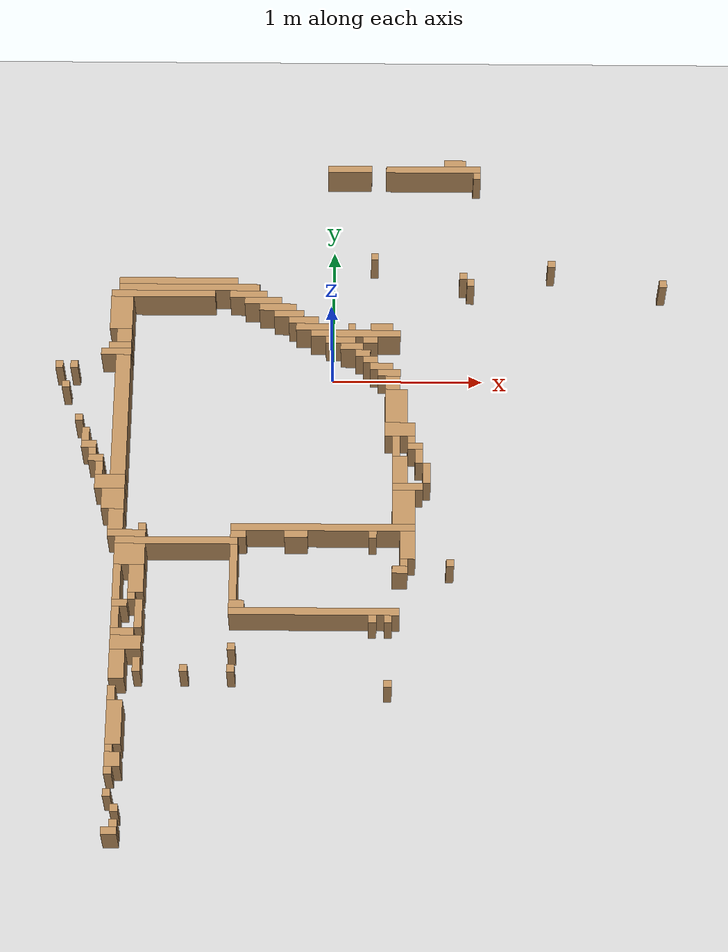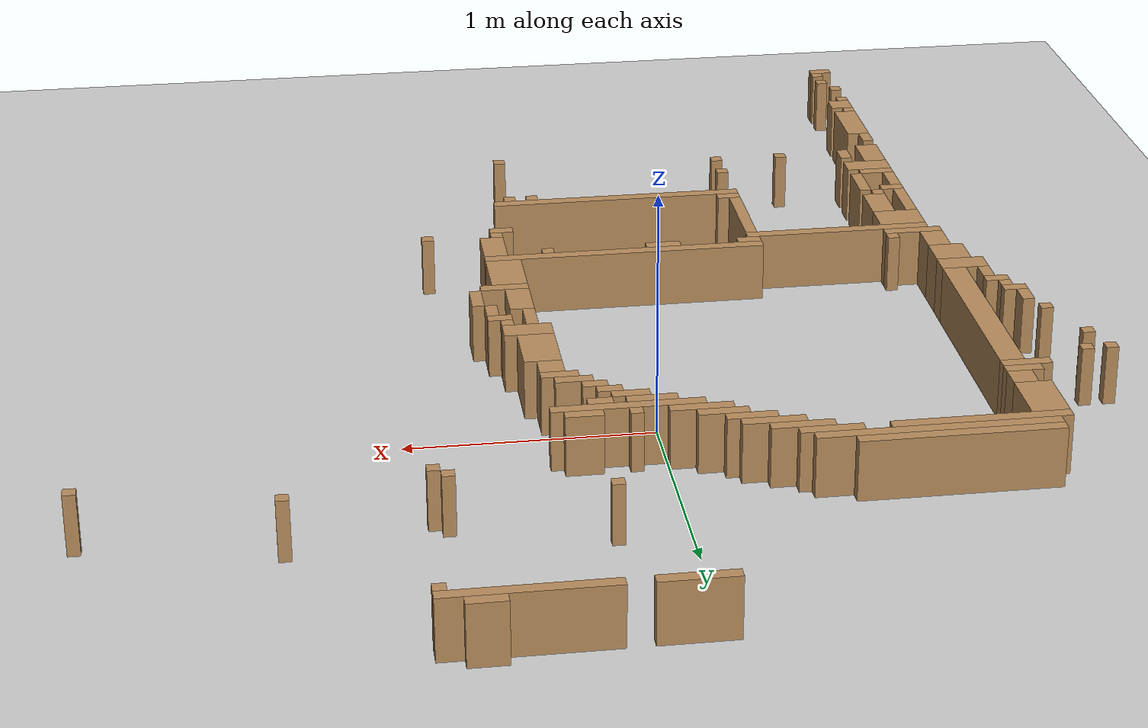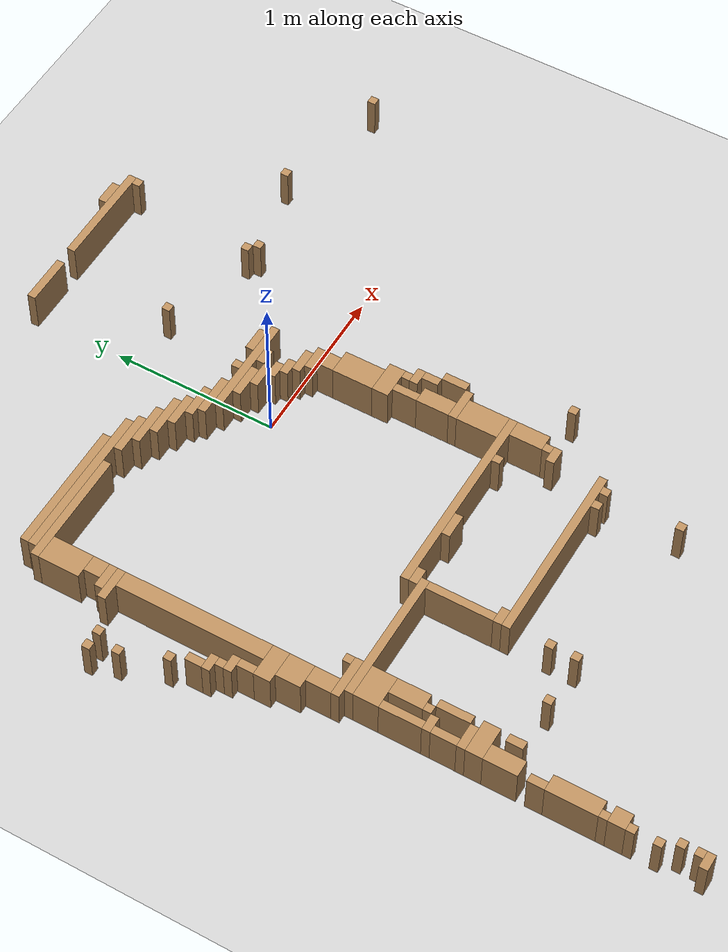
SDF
<?xml version="1.0"?>
<!-- Monde généré par make_world_from_map.py : jumeau de la zone réelle en carton. -->
<sdf version="1.6">
  <world name="default">

    <include>
      <uri>model://ground_plane</uri>
    </include>

    <include>
      <uri>model://sun</uri>
    </include>

    <scene>
      <shadows>false</shadows>
    </scene>

    <physics type="ode">
      <real_time_update_rate>1000.0</real_time_update_rate>
      <max_step_size>0.001</max_step_size>
      <real_time_factor>1</real_time_factor>
      <ode>
        <solver>
          <type>quick</type>
          <iters>150</iters>
          <precon_iters>0</precon_iters>
          <sor>1.400000</sor>
          <use_dynamic_moi_rescaling>1</use_dynamic_moi_rescaling>
        </solver>
        <constraints>
          <cfm>0.00001</cfm>
          <erp>0.2</erp>
          <contact_max_correcting_vel>2000.000000</contact_max_correcting_vel>
          <contact_surface_layer>0.01000</contact_surface_layer>
        </constraints>
      </ode>
    </physics>

    <model name="zone_reelle">
      <static>1</static>
      <pose>0 0 0 0 0 0</pose>
      <link name="murs">
        <collision name="collision_0">
          <pose>-1.3500 -3.3150 0.1250 0 0 0</pose>
          <geometry><box><size>0.1000 0.0500 0.2500</size></box></geometry>
        </collision>
        <visual name="visual_0">
          <pose>-1.3500 -3.3150 0.1250 0 0 0</pose>
          <geometry><box><size>0.1000 0.0500 0.2500</size></box></geometry>
          <material>
            <ambient>0.72 0.55 0.36 1</ambient>
            <diffuse>0.72 0.55 0.36 1</diffuse>
          </material>
        </visual>
        <collision name="collision_1">
          <pose>-1.3250 -3.2650 0.1250 0 0 0</pose>
          <geometry><box><size>0.0500 0.0500 0.2500</size></box></geometry>
        </collision>
        <visual name="visual_1">
          <pose>-1.3250 -3.2650 0.1250 0 0 0</pose>
          <geometry><box><size>0.0500 0.0500 0.2500</size></box></geometry>
          <material>
            <ambient>0.72 0.55 0.36 1</ambient>
            <diffuse>0.72 0.55 0.36 1</diffuse>
          </material>
        </visual>
        <collision name="collision_2">
          <pose>-1.3250 -3.1650 0.1250 0 0 0</pose>
          <geometry><box><size>0.0500 0.0500 0.2500</size></box></geometry>
        </collision>
        <visual name="visual_2">
          <pose>-1.3250 -3.1650 0.1250 0 0 0</pose>
          <geometry><box><size>0.0500 0.0500 0.2500</size></box></geometry>
          <material>
            <ambient>0.72 0.55 0.36 1</ambient>
            <diffuse>0.72 0.55 0.36 1</diffuse>
          </material>
        </visual>
        <collision name="collision_3">
          <pose>-1.3750 -3.0650 0.1250 0 0 0</pose>
          <geometry><box><size>0.0500 0.0500 0.2500</size></box></geometry>
        </collision>
        <visual name="visual_3">
          <pose>-1.3750 -3.0650 0.1250 0 0 0</pose>
          <geometry><box><size>0.0500 0.0500 0.2500</size></box></geometry>
          <material>
            <ambient>0.72 0.55 0.36 1</ambient>
            <diffuse>0.72 0.55 0.36 1</diffuse>
          </material>
        </visual>
        <collision name="collision_4">
          <pose>-1.3750 -2.9150 0.1250 0 0 0</pose>
          <geometry><box><size>0.0500 0.0500 0.2500</size></box></geometry>
        </collision>
        <visual name="visual_4">
          <pose>-1.3750 -2.9150 0.1250 0 0 0</pose>
          <geometry><box><size>0.0500 0.0500 0.2500</size></box></geometry>
          <material>
            <ambient>0.72 0.55 0.36 1</ambient>
            <diffuse>0.72 0.55 0.36 1</diffuse>
          </material>
        </visual>
        <collision name="collision_5">
          <pose>-1.3500 -2.8400 0.1250 0 0 0</pose>
          <geometry><box><size>0.1000 0.1000 0.2500</size></box></geometry>
        </collision>
        <visual name="visual_5">
          <pose>-1.3500 -2.8400 0.1250 0 0 0</pose>
          <geometry><box><size>0.1000 0.1000 0.2500</size></box></geometry>
          <material>
            <ambient>0.72 0.55 0.36 1</ambient>
            <diffuse>0.72 0.55 0.36 1</diffuse>
          </material>
        </visual>
        <collision name="collision_6">
          <pose>-1.3750 -2.7650 0.1250 0 0 0</pose>
          <geometry><box><size>0.0500 0.0500 0.2500</size></box></geometry>
        </collision>
        <visual name="visual_6">
          <pose>-1.3750 -2.7650 0.1250 0 0 0</pose>
          <geometry><box><size>0.0500 0.0500 0.2500</size></box></geometry>
          <material>
            <ambient>0.72 0.55 0.36 1</ambient>
            <diffuse>0.72 0.55 0.36 1</diffuse>
          </material>
        </visual>
        <collision name="collision_7">
          <pose>-1.3500 -2.5900 0.1250 0 0 0</pose>
          <geometry><box><size>0.1000 0.3000 0.2500</size></box></geometry>
        </collision>
        <visual name="visual_7">
          <pose>-1.3500 -2.5900 0.1250 0 0 0</pose>
          <geometry><box><size>0.1000 0.3000 0.2500</size></box></geometry>
          <material>
            <ambient>0.72 0.55 0.36 1</ambient>
            <diffuse>0.72 0.55 0.36 1</diffuse>
          </material>
        </visual>
        <collision name="collision_8">
          <pose>-1.3750 -2.3900 0.1250 0 0 0</pose>
          <geometry><box><size>0.0500 0.1000 0.2500</size></box></geometry>
        </collision>
        <visual name="visual_8">
          <pose>-1.3750 -2.3900 0.1250 0 0 0</pose>
          <geometry><box><size>0.0500 0.1000 0.2500</size></box></geometry>
          <material>
            <ambient>0.72 0.55 0.36 1</ambient>
            <diffuse>0.72 0.55 0.36 1</diffuse>
          </material>
        </visual>
        <collision name="collision_9">
          <pose>0.3750 -2.3150 0.1250 0 0 0</pose>
          <geometry><box><size>0.0500 0.0500 0.2500</size></box></geometry>
        </collision>
        <visual name="visual_9">
          <pose>0.3750 -2.3150 0.1250 0 0 0</pose>
          <geometry><box><size>0.0500 0.0500 0.2500</size></box></geometry>
          <material>
            <ambient>0.72 0.55 0.36 1</ambient>
            <diffuse>0.72 0.55 0.36 1</diffuse>
          </material>
        </visual>
        <collision name="collision_10">
          <pose>-0.6250 -2.2150 0.1250 0 0 0</pose>
          <geometry><box><size>0.0500 0.0500 0.2500</size></box></geometry>
        </collision>
        <visual name="visual_10">
          <pose>-0.6250 -2.2150 0.1250 0 0 0</pose>
          <geometry><box><size>0.0500 0.0500 0.2500</size></box></geometry>
          <material>
            <ambient>0.72 0.55 0.36 1</ambient>
            <diffuse>0.72 0.55 0.36 1</diffuse>
          </material>
        </visual>
        <collision name="collision_11">
          <pose>-0.9250 -2.2150 0.1250 0 0 0</pose>
          <geometry><box><size>0.0500 0.0500 0.2500</size></box></geometry>
        </collision>
        <visual name="visual_11">
          <pose>-0.9250 -2.2150 0.1250 0 0 0</pose>
          <geometry><box><size>0.0500 0.0500 0.2500</size></box></geometry>
          <material>
            <ambient>0.72 0.55 0.36 1</ambient>
            <diffuse>0.72 0.55 0.36 1</diffuse>
          </material>
        </visual>
        <collision name="collision_12">
          <pose>-1.2250 -2.1900 0.1250 0 0 0</pose>
          <geometry><box><size>0.0500 0.1000 0.2500</size></box></geometry>
        </collision>
        <visual name="visual_12">
          <pose>-1.2250 -2.1900 0.1250 0 0 0</pose>
          <geometry><box><size>0.0500 0.1000 0.2500</size></box></geometry>
          <material>
            <ambient>0.72 0.55 0.36 1</ambient>
            <diffuse>0.72 0.55 0.36 1</diffuse>
          </material>
        </visual>
        <collision name="collision_13">
          <pose>-1.3500 -2.1900 0.1250 0 0 0</pose>
          <geometry><box><size>0.1000 0.2000 0.2500</size></box></geometry>
        </collision>
        <visual name="visual_13">
          <pose>-1.3500 -2.1900 0.1250 0 0 0</pose>
          <geometry><box><size>0.1000 0.2000 0.2500</size></box></geometry>
          <material>
            <ambient>0.72 0.55 0.36 1</ambient>
            <diffuse>0.72 0.55 0.36 1</diffuse>
          </material>
        </visual>
        <collision name="collision_14">
          <pose>-0.6250 -2.0650 0.1250 0 0 0</pose>
          <geometry><box><size>0.0500 0.0500 0.2500</size></box></geometry>
        </collision>
        <visual name="visual_14">
          <pose>-0.6250 -2.0650 0.1250 0 0 0</pose>
          <geometry><box><size>0.0500 0.0500 0.2500</size></box></geometry>
          <material>
            <ambient>0.72 0.55 0.36 1</ambient>
            <diffuse>0.72 0.55 0.36 1</diffuse>
          </material>
        </visual>
        <collision name="collision_15">
          <pose>-1.3000 -2.0400 0.1250 0 0 0</pose>
          <geometry><box><size>0.2000 0.1000 0.2500</size></box></geometry>
        </collision>
        <visual name="visual_15">
          <pose>-1.3000 -2.0400 0.1250 0 0 0</pose>
          <geometry><box><size>0.2000 0.1000 0.2500</size></box></geometry>
          <material>
            <ambient>0.72 0.55 0.36 1</ambient>
            <diffuse>0.72 0.55 0.36 1</diffuse>
          </material>
        </visual>
        <collision name="collision_16">
          <pose>-1.3250 -1.9650 0.1250 0 0 0</pose>
          <geometry><box><size>0.1500 0.0500 0.2500</size></box></geometry>
        </collision>
        <visual name="visual_16">
          <pose>-1.3250 -1.9650 0.1250 0 0 0</pose>
          <geometry><box><size>0.1500 0.0500 0.2500</size></box></geometry>
          <material>
            <ambient>0.72 0.55 0.36 1</ambient>
            <diffuse>0.72 0.55 0.36 1</diffuse>
          </material>
        </visual>
        <collision name="collision_17">
          <pose>0.2750 -1.8650 0.1250 0 0 0</pose>
          <geometry><box><size>0.0500 0.0500 0.2500</size></box></geometry>
        </collision>
        <visual name="visual_17">
          <pose>0.2750 -1.8650 0.1250 0 0 0</pose>
          <geometry><box><size>0.0500 0.0500 0.2500</size></box></geometry>
          <material>
            <ambient>0.72 0.55 0.36 1</ambient>
            <diffuse>0.72 0.55 0.36 1</diffuse>
          </material>
        </visual>
        <collision name="collision_18">
          <pose>0.3750 -1.8650 0.1250 0 0 0</pose>
          <geometry><box><size>0.0500 0.0500 0.2500</size></box></geometry>
        </collision>
        <visual name="visual_18">
          <pose>0.3750 -1.8650 0.1250 0 0 0</pose>
          <geometry><box><size>0.0500 0.0500 0.2500</size></box></geometry>
          <material>
            <ambient>0.72 0.55 0.36 1</ambient>
            <diffuse>0.72 0.55 0.36 1</diffuse>
          </material>
        </visual>
        <collision name="collision_19">
          <pose>-1.3750 -1.8650 0.1250 0 0 0</pose>
          <geometry><box><size>0.0500 0.1500 0.2500</size></box></geometry>
        </collision>
        <visual name="visual_19">
          <pose>-1.3750 -1.8650 0.1250 0 0 0</pose>
          <geometry><box><size>0.0500 0.1500 0.2500</size></box></geometry>
          <material>
            <ambient>0.72 0.55 0.36 1</ambient>
            <diffuse>0.72 0.55 0.36 1</diffuse>
          </material>
        </visual>
        <collision name="collision_20">
          <pose>-0.1000 -1.8150 0.1250 0 0 0</pose>
          <geometry><box><size>1.1000 0.0500 0.2500</size></box></geometry>
        </collision>
        <visual name="visual_20">
          <pose>-0.1000 -1.8150 0.1250 0 0 0</pose>
          <geometry><box><size>1.1000 0.0500 0.2500</size></box></geometry>
          <material>
            <ambient>0.72 0.55 0.36 1</ambient>
            <diffuse>0.72 0.55 0.36 1</diffuse>
          </material>
        </visual>
        <collision name="collision_21">
          <pose>-1.2250 -1.8400 0.1250 0 0 0</pose>
          <geometry><box><size>0.0500 0.2000 0.2500</size></box></geometry>
        </collision>
        <visual name="visual_21">
          <pose>-1.2250 -1.8400 0.1250 0 0 0</pose>
          <geometry><box><size>0.0500 0.2000 0.2500</size></box></geometry>
          <material>
            <ambient>0.72 0.55 0.36 1</ambient>
            <diffuse>0.72 0.55 0.36 1</diffuse>
          </material>
        </visual>
        <collision name="collision_22">
          <pose>-0.6000 -1.7650 0.1250 0 0 0</pose>
          <geometry><box><size>0.1000 0.0500 0.2500</size></box></geometry>
        </collision>
        <visual name="visual_22">
          <pose>-0.6000 -1.7650 0.1250 0 0 0</pose>
          <geometry><box><size>0.1000 0.0500 0.2500</size></box></geometry>
          <material>
            <ambient>0.72 0.55 0.36 1</ambient>
            <diffuse>0.72 0.55 0.36 1</diffuse>
          </material>
        </visual>
        <collision name="collision_23">
          <pose>-1.3500 -1.7650 0.1250 0 0 0</pose>
          <geometry><box><size>0.1000 0.0500 0.2500</size></box></geometry>
        </collision>
        <visual name="visual_23">
          <pose>-1.3500 -1.7650 0.1250 0 0 0</pose>
          <geometry><box><size>0.1000 0.0500 0.2500</size></box></geometry>
          <material>
            <ambient>0.72 0.55 0.36 1</ambient>
            <diffuse>0.72 0.55 0.36 1</diffuse>
          </material>
        </visual>
        <collision name="collision_24">
          <pose>-1.2750 -1.7150 0.1250 0 0 0</pose>
          <geometry><box><size>0.0500 0.0500 0.2500</size></box></geometry>
        </collision>
        <visual name="visual_24">
          <pose>-1.2750 -1.7150 0.1250 0 0 0</pose>
          <geometry><box><size>0.0500 0.0500 0.2500</size></box></geometry>
          <material>
            <ambient>0.72 0.55 0.36 1</ambient>
            <diffuse>0.72 0.55 0.36 1</diffuse>
          </material>
        </visual>
        <collision name="collision_25">
          <pose>-1.3750 -1.6150 0.1250 0 0 0</pose>
          <geometry><box><size>0.0500 0.2500 0.2500</size></box></geometry>
        </collision>
        <visual name="visual_25">
          <pose>-1.3750 -1.6150 0.1250 0 0 0</pose>
          <geometry><box><size>0.0500 0.2500 0.2500</size></box></geometry>
          <material>
            <ambient>0.72 0.55 0.36 1</ambient>
            <diffuse>0.72 0.55 0.36 1</diffuse>
          </material>
        </visual>
        <collision name="collision_26">
          <pose>-1.2500 -1.5900 0.1250 0 0 0</pose>
          <geometry><box><size>0.1000 0.2000 0.2500</size></box></geometry>
        </collision>
        <visual name="visual_26">
          <pose>-1.2500 -1.5900 0.1250 0 0 0</pose>
          <geometry><box><size>0.1000 0.2000 0.2500</size></box></geometry>
          <material>
            <ambient>0.72 0.55 0.36 1</ambient>
            <diffuse>0.72 0.55 0.36 1</diffuse>
          </material>
        </visual>
        <collision name="collision_27">
          <pose>0.4500 -1.5150 0.1250 0 0 0</pose>
          <geometry><box><size>0.1000 0.0500 0.2500</size></box></geometry>
        </collision>
        <visual name="visual_27">
          <pose>0.4500 -1.5150 0.1250 0 0 0</pose>
          <geometry><box><size>0.1000 0.0500 0.2500</size></box></geometry>
          <material>
            <ambient>0.72 0.55 0.36 1</ambient>
            <diffuse>0.72 0.55 0.36 1</diffuse>
          </material>
        </visual>
        <collision name="collision_28">
          <pose>0.7750 -1.4650 0.1250 0 0 0</pose>
          <geometry><box><size>0.0500 0.0500 0.2500</size></box></geometry>
        </collision>
        <visual name="visual_28">
          <pose>0.7750 -1.4650 0.1250 0 0 0</pose>
          <geometry><box><size>0.0500 0.0500 0.2500</size></box></geometry>
          <material>
            <ambient>0.72 0.55 0.36 1</ambient>
            <diffuse>0.72 0.55 0.36 1</diffuse>
          </material>
        </visual>
        <collision name="collision_29">
          <pose>0.4750 -1.4650 0.1250 0 0 0</pose>
          <geometry><box><size>0.0500 0.0500 0.2500</size></box></geometry>
        </collision>
        <visual name="visual_29">
          <pose>0.4750 -1.4650 0.1250 0 0 0</pose>
          <geometry><box><size>0.0500 0.0500 0.2500</size></box></geometry>
          <material>
            <ambient>0.72 0.55 0.36 1</ambient>
            <diffuse>0.72 0.55 0.36 1</diffuse>
          </material>
        </visual>
        <collision name="collision_30">
          <pose>-0.6250 -1.5400 0.1250 0 0 0</pose>
          <geometry><box><size>0.0500 0.4000 0.2500</size></box></geometry>
        </collision>
        <visual name="visual_30">
          <pose>-0.6250 -1.5400 0.1250 0 0 0</pose>
          <geometry><box><size>0.0500 0.4000 0.2500</size></box></geometry>
          <material>
            <ambient>0.72 0.55 0.36 1</ambient>
            <diffuse>0.72 0.55 0.36 1</diffuse>
          </material>
        </visual>
        <collision name="collision_31">
          <pose>-1.3000 -1.4150 0.1250 0 0 0</pose>
          <geometry><box><size>0.2000 0.1500 0.2500</size></box></geometry>
        </collision>
        <visual name="visual_31">
          <pose>-1.3000 -1.4150 0.1250 0 0 0</pose>
          <geometry><box><size>0.2000 0.1500 0.2500</size></box></geometry>
          <material>
            <ambient>0.72 0.55 0.36 1</ambient>
            <diffuse>0.72 0.55 0.36 1</diffuse>
          </material>
        </visual>
        <collision name="collision_32">
          <pose>-1.0000 -1.3150 0.1250 0 0 0</pose>
          <geometry><box><size>0.8000 0.0500 0.2500</size></box></geometry>
        </collision>
        <visual name="visual_32">
          <pose>-1.0000 -1.3150 0.1250 0 0 0</pose>
          <geometry><box><size>0.8000 0.0500 0.2500</size></box></geometry>
          <material>
            <ambient>0.72 0.55 0.36 1</ambient>
            <diffuse>0.72 0.55 0.36 1</diffuse>
          </material>
        </visual>
        <collision name="collision_33">
          <pose>0.5000 -1.3400 0.1250 0 0 0</pose>
          <geometry><box><size>0.1000 0.2000 0.2500</size></box></geometry>
        </collision>
        <visual name="visual_33">
          <pose>0.5000 -1.3400 0.1250 0 0 0</pose>
          <geometry><box><size>0.1000 0.2000 0.2500</size></box></geometry>
          <material>
            <ambient>0.72 0.55 0.36 1</ambient>
            <diffuse>0.72 0.55 0.36 1</diffuse>
          </material>
        </visual>
        <collision name="collision_34">
          <pose>-0.6000 -1.2650 0.1250 0 0 0</pose>
          <geometry><box><size>0.1000 0.0500 0.2500</size></box></geometry>
        </collision>
        <visual name="visual_34">
          <pose>-0.6000 -1.2650 0.1250 0 0 0</pose>
          <geometry><box><size>0.1000 0.0500 0.2500</size></box></geometry>
          <material>
            <ambient>0.72 0.55 0.36 1</ambient>
            <diffuse>0.72 0.55 0.36 1</diffuse>
          </material>
        </visual>
        <collision name="collision_35">
          <pose>-1.3250 -1.2650 0.1250 0 0 0</pose>
          <geometry><box><size>0.2500 0.0500 0.2500</size></box></geometry>
        </collision>
        <visual name="visual_35">
          <pose>-1.3250 -1.2650 0.1250 0 0 0</pose>
          <geometry><box><size>0.2500 0.0500 0.2500</size></box></geometry>
          <material>
            <ambient>0.72 0.55 0.36 1</ambient>
            <diffuse>0.72 0.55 0.36 1</diffuse>
          </material>
        </visual>
        <collision name="collision_36">
          <pose>-0.2250 -1.2650 0.1250 0 0 0</pose>
          <geometry><box><size>0.1500 0.0500 0.2500</size></box></geometry>
        </collision>
        <visual name="visual_36">
          <pose>-0.2250 -1.2650 0.1250 0 0 0</pose>
          <geometry><box><size>0.1500 0.0500 0.2500</size></box></geometry>
          <material>
            <ambient>0.72 0.55 0.36 1</ambient>
            <diffuse>0.72 0.55 0.36 1</diffuse>
          </material>
        </visual>
        <collision name="collision_37">
          <pose>0.2750 -1.2650 0.1250 0 0 0</pose>
          <geometry><box><size>0.0500 0.0500 0.2500</size></box></geometry>
        </collision>
        <visual name="visual_37">
          <pose>0.2750 -1.2650 0.1250 0 0 0</pose>
          <geometry><box><size>0.0500 0.0500 0.2500</size></box></geometry>
          <material>
            <ambient>0.72 0.55 0.36 1</ambient>
            <diffuse>0.72 0.55 0.36 1</diffuse>
          </material>
        </visual>
        <collision name="collision_38">
          <pose>-1.2250 -1.2150 0.1250 0 0 0</pose>
          <geometry><box><size>0.0500 0.0500 0.2500</size></box></geometry>
        </collision>
        <visual name="visual_38">
          <pose>-1.2250 -1.2150 0.1250 0 0 0</pose>
          <geometry><box><size>0.0500 0.0500 0.2500</size></box></geometry>
          <material>
            <ambient>0.72 0.55 0.36 1</ambient>
            <diffuse>0.72 0.55 0.36 1</diffuse>
          </material>
        </visual>
        <collision name="collision_39">
          <pose>-0.0500 -1.2150 0.1250 0 0 0</pose>
          <geometry><box><size>1.2000 0.0500 0.2500</size></box></geometry>
        </collision>
        <visual name="visual_39">
          <pose>-0.0500 -1.2150 0.1250 0 0 0</pose>
          <geometry><box><size>1.2000 0.0500 0.2500</size></box></geometry>
          <material>
            <ambient>0.72 0.55 0.36 1</ambient>
            <diffuse>0.72 0.55 0.36 1</diffuse>
          </material>
        </visual>
        <collision name="collision_40">
          <pose>-1.4000 -1.1650 0.1250 0 0 0</pose>
          <geometry><box><size>0.1000 0.1500 0.2500</size></box></geometry>
        </collision>
        <visual name="visual_40">
          <pose>-1.4000 -1.1650 0.1250 0 0 0</pose>
          <geometry><box><size>0.1000 0.1500 0.2500</size></box></geometry>
          <material>
            <ambient>0.72 0.55 0.36 1</ambient>
            <diffuse>0.72 0.55 0.36 1</diffuse>
          </material>
        </visual>
        <collision name="collision_41">
          <pose>0.4750 -1.0650 0.1250 0 0 0</pose>
          <geometry><box><size>0.1500 0.2500 0.2500</size></box></geometry>
        </collision>
        <visual name="visual_41">
          <pose>0.4750 -1.0650 0.1250 0 0 0</pose>
          <geometry><box><size>0.1500 0.2500 0.2500</size></box></geometry>
          <material>
            <ambient>0.72 0.55 0.36 1</ambient>
            <diffuse>0.72 0.55 0.36 1</diffuse>
          </material>
        </visual>
        <collision name="collision_42">
          <pose>-1.4250 -1.0150 0.1250 0 0 0</pose>
          <geometry><box><size>0.1500 0.1500 0.2500</size></box></geometry>
        </collision>
        <visual name="visual_42">
          <pose>-1.4250 -1.0150 0.1250 0 0 0</pose>
          <geometry><box><size>0.1500 0.1500 0.2500</size></box></geometry>
          <material>
            <ambient>0.72 0.55 0.36 1</ambient>
            <diffuse>0.72 0.55 0.36 1</diffuse>
          </material>
        </visual>
        <collision name="collision_43">
          <pose>0.5000 -0.9150 0.1250 0 0 0</pose>
          <geometry><box><size>0.2000 0.0500 0.2500</size></box></geometry>
        </collision>
        <visual name="visual_43">
          <pose>0.5000 -0.9150 0.1250 0 0 0</pose>
          <geometry><box><size>0.2000 0.0500 0.2500</size></box></geometry>
          <material>
            <ambient>0.72 0.55 0.36 1</ambient>
            <diffuse>0.72 0.55 0.36 1</diffuse>
          </material>
        </visual>
        <collision name="collision_44">
          <pose>-1.4500 -0.8900 0.1250 0 0 0</pose>
          <geometry><box><size>0.2000 0.1000 0.2500</size></box></geometry>
        </collision>
        <visual name="visual_44">
          <pose>-1.4500 -0.8900 0.1250 0 0 0</pose>
          <geometry><box><size>0.2000 0.1000 0.2500</size></box></geometry>
          <material>
            <ambient>0.72 0.55 0.36 1</ambient>
            <diffuse>0.72 0.55 0.36 1</diffuse>
          </material>
        </visual>
        <collision name="collision_45">
          <pose>0.6250 -0.8150 0.1250 0 0 0</pose>
          <geometry><box><size>0.0500 0.1500 0.2500</size></box></geometry>
        </collision>
        <visual name="visual_45">
          <pose>0.6250 -0.8150 0.1250 0 0 0</pose>
          <geometry><box><size>0.0500 0.1500 0.2500</size></box></geometry>
          <material>
            <ambient>0.72 0.55 0.36 1</ambient>
            <diffuse>0.72 0.55 0.36 1</diffuse>
          </material>
        </visual>
        <collision name="collision_46">
          <pose>-1.5250 -0.7900 0.1250 0 0 0</pose>
          <geometry><box><size>0.0500 0.1000 0.2500</size></box></geometry>
        </collision>
        <visual name="visual_46">
          <pose>-1.5250 -0.7900 0.1250 0 0 0</pose>
          <geometry><box><size>0.0500 0.1000 0.2500</size></box></geometry>
          <material>
            <ambient>0.72 0.55 0.36 1</ambient>
            <diffuse>0.72 0.55 0.36 1</diffuse>
          </material>
        </visual>
        <collision name="collision_47">
          <pose>0.4500 -0.7900 0.1250 0 0 0</pose>
          <geometry><box><size>0.1000 0.2000 0.2500</size></box></geometry>
        </collision>
        <visual name="visual_47">
          <pose>0.4500 -0.7900 0.1250 0 0 0</pose>
          <geometry><box><size>0.1000 0.2000 0.2500</size></box></geometry>
          <material>
            <ambient>0.72 0.55 0.36 1</ambient>
            <diffuse>0.72 0.55 0.36 1</diffuse>
          </material>
        </visual>
        <collision name="collision_48">
          <pose>-1.5500 -0.7150 0.1250 0 0 0</pose>
          <geometry><box><size>0.1000 0.0500 0.2500</size></box></geometry>
        </collision>
        <visual name="visual_48">
          <pose>-1.5500 -0.7150 0.1250 0 0 0</pose>
          <geometry><box><size>0.1000 0.0500 0.2500</size></box></geometry>
          <material>
            <ambient>0.72 0.55 0.36 1</ambient>
            <diffuse>0.72 0.55 0.36 1</diffuse>
          </material>
        </visual>
        <collision name="collision_49">
          <pose>0.5750 -0.6900 0.1250 0 0 0</pose>
          <geometry><box><size>0.0500 0.1000 0.2500</size></box></geometry>
        </collision>
        <visual name="visual_49">
          <pose>0.5750 -0.6900 0.1250 0 0 0</pose>
          <geometry><box><size>0.0500 0.1000 0.2500</size></box></geometry>
          <material>
            <ambient>0.72 0.55 0.36 1</ambient>
            <diffuse>0.72 0.55 0.36 1</diffuse>
          </material>
        </visual>
        <collision name="collision_50">
          <pose>-1.5750 -0.6650 0.1250 0 0 0</pose>
          <geometry><box><size>0.0500 0.0500 0.2500</size></box></geometry>
        </collision>
        <visual name="visual_50">
          <pose>-1.5750 -0.6650 0.1250 0 0 0</pose>
          <geometry><box><size>0.0500 0.0500 0.2500</size></box></geometry>
          <material>
            <ambient>0.72 0.55 0.36 1</ambient>
            <diffuse>0.72 0.55 0.36 1</diffuse>
          </material>
        </visual>
        <collision name="collision_51">
          <pose>0.5500 -0.6150 0.1250 0 0 0</pose>
          <geometry><box><size>0.1000 0.0500 0.2500</size></box></geometry>
        </collision>
        <visual name="visual_51">
          <pose>0.5500 -0.6150 0.1250 0 0 0</pose>
          <geometry><box><size>0.1000 0.0500 0.2500</size></box></geometry>
          <material>
            <ambient>0.72 0.55 0.36 1</ambient>
            <diffuse>0.72 0.55 0.36 1</diffuse>
          </material>
        </visual>
        <collision name="collision_52">
          <pose>-1.6000 -0.6150 0.1250 0 0 0</pose>
          <geometry><box><size>0.1000 0.0500 0.2500</size></box></geometry>
        </collision>
        <visual name="visual_52">
          <pose>-1.6000 -0.6150 0.1250 0 0 0</pose>
          <geometry><box><size>0.1000 0.0500 0.2500</size></box></geometry>
          <material>
            <ambient>0.72 0.55 0.36 1</ambient>
            <diffuse>0.72 0.55 0.36 1</diffuse>
          </material>
        </visual>
        <collision name="collision_53">
          <pose>0.4250 -0.6150 0.1250 0 0 0</pose>
          <geometry><box><size>0.0500 0.1500 0.2500</size></box></geometry>
        </collision>
        <visual name="visual_53">
          <pose>0.4250 -0.6150 0.1250 0 0 0</pose>
          <geometry><box><size>0.0500 0.1500 0.2500</size></box></geometry>
          <material>
            <ambient>0.72 0.55 0.36 1</ambient>
            <diffuse>0.72 0.55 0.36 1</diffuse>
          </material>
        </visual>
        <collision name="collision_54">
          <pose>0.5250 -0.5650 0.1250 0 0 0</pose>
          <geometry><box><size>0.0500 0.0500 0.2500</size></box></geometry>
        </collision>
        <visual name="visual_54">
          <pose>0.5250 -0.5650 0.1250 0 0 0</pose>
          <geometry><box><size>0.0500 0.0500 0.2500</size></box></geometry>
          <material>
            <ambient>0.72 0.55 0.36 1</ambient>
            <diffuse>0.72 0.55 0.36 1</diffuse>
          </material>
        </visual>
        <collision name="collision_55">
          <pose>-1.6250 -0.5400 0.1250 0 0 0</pose>
          <geometry><box><size>0.0500 0.1000 0.2500</size></box></geometry>
        </collision>
        <visual name="visual_55">
          <pose>-1.6250 -0.5400 0.1250 0 0 0</pose>
          <geometry><box><size>0.0500 0.1000 0.2500</size></box></geometry>
          <material>
            <ambient>0.72 0.55 0.36 1</ambient>
            <diffuse>0.72 0.55 0.36 1</diffuse>
          </material>
        </visual>
        <collision name="collision_56">
          <pose>0.4500 -0.4900 0.1250 0 0 0</pose>
          <geometry><box><size>0.2000 0.1000 0.2500</size></box></geometry>
        </collision>
        <visual name="visual_56">
          <pose>0.4500 -0.4900 0.1250 0 0 0</pose>
          <geometry><box><size>0.2000 0.1000 0.2500</size></box></geometry>
          <material>
            <ambient>0.72 0.55 0.36 1</ambient>
            <diffuse>0.72 0.55 0.36 1</diffuse>
          </material>
        </visual>
        <collision name="collision_57">
          <pose>-1.6750 -0.4150 0.1250 0 0 0</pose>
          <geometry><box><size>0.0500 0.0500 0.2500</size></box></geometry>
        </collision>
        <visual name="visual_57">
          <pose>-1.6750 -0.4150 0.1250 0 0 0</pose>
          <geometry><box><size>0.0500 0.0500 0.2500</size></box></geometry>
          <material>
            <ambient>0.72 0.55 0.36 1</ambient>
            <diffuse>0.72 0.55 0.36 1</diffuse>
          </material>
        </visual>
        <collision name="collision_58">
          <pose>0.4250 -0.3150 0.1250 0 0 0</pose>
          <geometry><box><size>0.1500 0.2500 0.2500</size></box></geometry>
        </collision>
        <visual name="visual_58">
          <pose>0.4250 -0.3150 0.1250 0 0 0</pose>
          <geometry><box><size>0.1500 0.2500 0.2500</size></box></geometry>
          <material>
            <ambient>0.72 0.55 0.36 1</ambient>
            <diffuse>0.72 0.55 0.36 1</diffuse>
          </material>
        </visual>
        <collision name="collision_59">
          <pose>-1.7750 -0.1650 0.1250 0 0 0</pose>
          <geometry><box><size>0.0500 0.0500 0.2500</size></box></geometry>
        </collision>
        <visual name="visual_59">
          <pose>-1.7750 -0.1650 0.1250 0 0 0</pose>
          <geometry><box><size>0.0500 0.0500 0.2500</size></box></geometry>
          <material>
            <ambient>0.72 0.55 0.36 1</ambient>
            <diffuse>0.72 0.55 0.36 1</diffuse>
          </material>
        </visual>
        <collision name="collision_60">
          <pose>0.4000 -0.1400 0.1250 0 0 0</pose>
          <geometry><box><size>0.1000 0.1000 0.2500</size></box></geometry>
        </collision>
        <visual name="visual_60">
          <pose>0.4000 -0.1400 0.1250 0 0 0</pose>
          <geometry><box><size>0.1000 0.1000 0.2500</size></box></geometry>
          <material>
            <ambient>0.72 0.55 0.36 1</ambient>
            <diffuse>0.72 0.55 0.36 1</diffuse>
          </material>
        </visual>
        <collision name="collision_61">
          <pose>0.3750 -0.0650 0.1250 0 0 0</pose>
          <geometry><box><size>0.1500 0.0500 0.2500</size></box></geometry>
        </collision>
        <visual name="visual_61">
          <pose>0.3750 -0.0650 0.1250 0 0 0</pose>
          <geometry><box><size>0.1500 0.0500 0.2500</size></box></geometry>
          <material>
            <ambient>0.72 0.55 0.36 1</ambient>
            <diffuse>0.72 0.55 0.36 1</diffuse>
          </material>
        </visual>
        <collision name="collision_62">
          <pose>-1.7250 -0.0150 0.1250 0 0 0</pose>
          <geometry><box><size>0.0500 0.0500 0.2500</size></box></geometry>
        </collision>
        <visual name="visual_62">
          <pose>-1.7250 -0.0150 0.1250 0 0 0</pose>
          <geometry><box><size>0.0500 0.0500 0.2500</size></box></geometry>
          <material>
            <ambient>0.72 0.55 0.36 1</ambient>
            <diffuse>0.72 0.55 0.36 1</diffuse>
          </material>
        </visual>
        <collision name="collision_63">
          <pose>0.3250 -0.0150 0.1250 0 0 0</pose>
          <geometry><box><size>0.1500 0.0500 0.2500</size></box></geometry>
        </collision>
        <visual name="visual_63">
          <pose>0.3250 -0.0150 0.1250 0 0 0</pose>
          <geometry><box><size>0.1500 0.0500 0.2500</size></box></geometry>
          <material>
            <ambient>0.72 0.55 0.36 1</ambient>
            <diffuse>0.72 0.55 0.36 1</diffuse>
          </material>
        </visual>
        <collision name="collision_64">
          <pose>-1.8250 -0.0150 0.1250 0 0 0</pose>
          <geometry><box><size>0.0500 0.0500 0.2500</size></box></geometry>
        </collision>
        <visual name="visual_64">
          <pose>-1.8250 -0.0150 0.1250 0 0 0</pose>
          <geometry><box><size>0.0500 0.0500 0.2500</size></box></geometry>
          <material>
            <ambient>0.72 0.55 0.36 1</ambient>
            <diffuse>0.72 0.55 0.36 1</diffuse>
          </material>
        </visual>
        <collision name="collision_65">
          <pose>-1.4000 -0.3900 0.1250 0 0 0</pose>
          <geometry><box><size>0.1000 0.9000 0.2500</size></box></geometry>
        </collision>
        <visual name="visual_65">
          <pose>-1.4000 -0.3900 0.1250 0 0 0</pose>
          <geometry><box><size>0.1000 0.9000 0.2500</size></box></geometry>
          <material>
            <ambient>0.72 0.55 0.36 1</ambient>
            <diffuse>0.72 0.55 0.36 1</diffuse>
          </material>
        </visual>
        <collision name="collision_66">
          <pose>0.2500 0.0350 0.1250 0 0 0</pose>
          <geometry><box><size>0.1000 0.0500 0.2500</size></box></geometry>
        </collision>
        <visual name="visual_66">
          <pose>0.2500 0.0350 0.1250 0 0 0</pose>
          <geometry><box><size>0.1000 0.0500 0.2500</size></box></geometry>
          <material>
            <ambient>0.72 0.55 0.36 1</ambient>
            <diffuse>0.72 0.55 0.36 1</diffuse>
          </material>
        </visual>
        <collision name="collision_67">
          <pose>-1.4500 0.0850 0.1250 0 0 0</pose>
          <geometry><box><size>0.2000 0.0500 0.2500</size></box></geometry>
        </collision>
        <visual name="visual_67">
          <pose>-1.4500 0.0850 0.1250 0 0 0</pose>
          <geometry><box><size>0.2000 0.0500 0.2500</size></box></geometry>
          <material>
            <ambient>0.72 0.55 0.36 1</ambient>
            <diffuse>0.72 0.55 0.36 1</diffuse>
          </material>
        </visual>
        <collision name="collision_68">
          <pose>0.2000 0.0850 0.1250 0 0 0</pose>
          <geometry><box><size>0.1000 0.0500 0.2500</size></box></geometry>
        </collision>
        <visual name="visual_68">
          <pose>0.2000 0.0850 0.1250 0 0 0</pose>
          <geometry><box><size>0.1000 0.0500 0.2500</size></box></geometry>
          <material>
            <ambient>0.72 0.55 0.36 1</ambient>
            <diffuse>0.72 0.55 0.36 1</diffuse>
          </material>
        </visual>
        <collision name="collision_69">
          <pose>0.1250 0.1350 0.1250 0 0 0</pose>
          <geometry><box><size>0.1500 0.0500 0.2500</size></box></geometry>
        </collision>
        <visual name="visual_69">
          <pose>0.1250 0.1350 0.1250 0 0 0</pose>
          <geometry><box><size>0.1500 0.0500 0.2500</size></box></geometry>
          <material>
            <ambient>0.72 0.55 0.36 1</ambient>
            <diffuse>0.72 0.55 0.36 1</diffuse>
          </material>
        </visual>
        <collision name="collision_70">
          <pose>-1.4250 0.1350 0.1250 0 0 0</pose>
          <geometry><box><size>0.1500 0.0500 0.2500</size></box></geometry>
        </collision>
        <visual name="visual_70">
          <pose>-1.4250 0.1350 0.1250 0 0 0</pose>
          <geometry><box><size>0.1500 0.0500 0.2500</size></box></geometry>
          <material>
            <ambient>0.72 0.55 0.36 1</ambient>
            <diffuse>0.72 0.55 0.36 1</diffuse>
          </material>
        </visual>
        <collision name="collision_71">
          <pose>0.2500 0.1850 0.1250 0 0 0</pose>
          <geometry><box><size>0.1000 0.0500 0.2500</size></box></geometry>
        </collision>
        <visual name="visual_71">
          <pose>0.2500 0.1850 0.1250 0 0 0</pose>
          <geometry><box><size>0.1000 0.0500 0.2500</size></box></geometry>
          <material>
            <ambient>0.72 0.55 0.36 1</ambient>
            <diffuse>0.72 0.55 0.36 1</diffuse>
          </material>
        </visual>
        <collision name="collision_72">
          <pose>0.0500 0.1850 0.1250 0 0 0</pose>
          <geometry><box><size>0.2000 0.0500 0.2500</size></box></geometry>
        </collision>
        <visual name="visual_72">
          <pose>0.0500 0.1850 0.1250 0 0 0</pose>
          <geometry><box><size>0.2000 0.0500 0.2500</size></box></geometry>
          <material>
            <ambient>0.72 0.55 0.36 1</ambient>
            <diffuse>0.72 0.55 0.36 1</diffuse>
          </material>
        </visual>
        <collision name="collision_73">
          <pose>-1.4000 0.2100 0.1250 0 0 0</pose>
          <geometry><box><size>0.1000 0.1000 0.2500</size></box></geometry>
        </collision>
        <visual name="visual_73">
          <pose>-1.4000 0.2100 0.1250 0 0 0</pose>
          <geometry><box><size>0.1000 0.1000 0.2500</size></box></geometry>
          <material>
            <ambient>0.72 0.55 0.36 1</ambient>
            <diffuse>0.72 0.55 0.36 1</diffuse>
          </material>
        </visual>
        <collision name="collision_74">
          <pose>0.1500 0.2350 0.1250 0 0 0</pose>
          <geometry><box><size>0.6000 0.0500 0.2500</size></box></geometry>
        </collision>
        <visual name="visual_74">
          <pose>0.1500 0.2350 0.1250 0 0 0</pose>
          <geometry><box><size>0.6000 0.0500 0.2500</size></box></geometry>
          <material>
            <ambient>0.72 0.55 0.36 1</ambient>
            <diffuse>0.72 0.55 0.36 1</diffuse>
          </material>
        </visual>
        <collision name="collision_75">
          <pose>0.1250 0.2850 0.1250 0 0 0</pose>
          <geometry><box><size>0.0500 0.0500 0.2500</size></box></geometry>
        </collision>
        <visual name="visual_75">
          <pose>0.1250 0.2850 0.1250 0 0 0</pose>
          <geometry><box><size>0.0500 0.0500 0.2500</size></box></geometry>
          <material>
            <ambient>0.72 0.55 0.36 1</ambient>
            <diffuse>0.72 0.55 0.36 1</diffuse>
          </material>
        </visual>
        <collision name="collision_76">
          <pose>0.3250 0.2850 0.1250 0 0 0</pose>
          <geometry><box><size>0.1500 0.0500 0.2500</size></box></geometry>
        </collision>
        <visual name="visual_76">
          <pose>0.3250 0.2850 0.1250 0 0 0</pose>
          <geometry><box><size>0.1500 0.0500 0.2500</size></box></geometry>
          <material>
            <ambient>0.72 0.55 0.36 1</ambient>
            <diffuse>0.72 0.55 0.36 1</diffuse>
          </material>
        </visual>
        <collision name="collision_77">
          <pose>-0.1250 0.2850 0.1250 0 0 0</pose>
          <geometry><box><size>0.2500 0.0500 0.2500</size></box></geometry>
        </collision>
        <visual name="visual_77">
          <pose>-0.1250 0.2850 0.1250 0 0 0</pose>
          <geometry><box><size>0.2500 0.0500 0.2500</size></box></geometry>
          <material>
            <ambient>0.72 0.55 0.36 1</ambient>
            <diffuse>0.72 0.55 0.36 1</diffuse>
          </material>
        </visual>
        <collision name="collision_78">
          <pose>-0.2000 0.3350 0.1250 0 0 0</pose>
          <geometry><box><size>0.2000 0.0500 0.2500</size></box></geometry>
        </collision>
        <visual name="visual_78">
          <pose>-0.2000 0.3350 0.1250 0 0 0</pose>
          <geometry><box><size>0.2000 0.0500 0.2500</size></box></geometry>
          <material>
            <ambient>0.72 0.55 0.36 1</ambient>
            <diffuse>0.72 0.55 0.36 1</diffuse>
          </material>
        </visual>
        <collision name="collision_79">
          <pose>-0.3000 0.3850 0.1250 0 0 0</pose>
          <geometry><box><size>0.2000 0.0500 0.2500</size></box></geometry>
        </collision>
        <visual name="visual_79">
          <pose>-0.3000 0.3850 0.1250 0 0 0</pose>
          <geometry><box><size>0.2000 0.0500 0.2500</size></box></geometry>
          <material>
            <ambient>0.72 0.55 0.36 1</ambient>
            <diffuse>0.72 0.55 0.36 1</diffuse>
          </material>
        </visual>
        <collision name="collision_80">
          <pose>-0.3750 0.4350 0.1250 0 0 0</pose>
          <geometry><box><size>0.2500 0.0500 0.2500</size></box></geometry>
        </collision>
        <visual name="visual_80">
          <pose>-0.3750 0.4350 0.1250 0 0 0</pose>
          <geometry><box><size>0.2500 0.0500 0.2500</size></box></geometry>
          <material>
            <ambient>0.72 0.55 0.36 1</ambient>
            <diffuse>0.72 0.55 0.36 1</diffuse>
          </material>
        </visual>
        <collision name="collision_81">
          <pose>-1.4250 0.3850 0.1250 0 0 0</pose>
          <geometry><box><size>0.1500 0.2500 0.2500</size></box></geometry>
        </collision>
        <visual name="visual_81">
          <pose>-1.4250 0.3850 0.1250 0 0 0</pose>
          <geometry><box><size>0.1500 0.2500 0.2500</size></box></geometry>
          <material>
            <ambient>0.72 0.55 0.36 1</ambient>
            <diffuse>0.72 0.55 0.36 1</diffuse>
          </material>
        </visual>
        <collision name="collision_82">
          <pose>-0.4750 0.4850 0.1250 0 0 0</pose>
          <geometry><box><size>0.2500 0.0500 0.2500</size></box></geometry>
        </collision>
        <visual name="visual_82">
          <pose>-0.4750 0.4850 0.1250 0 0 0</pose>
          <geometry><box><size>0.2500 0.0500 0.2500</size></box></geometry>
          <material>
            <ambient>0.72 0.55 0.36 1</ambient>
            <diffuse>0.72 0.55 0.36 1</diffuse>
          </material>
        </visual>
        <collision name="collision_83">
          <pose>-0.5750 0.5350 0.1250 0 0 0</pose>
          <geometry><box><size>0.2500 0.0500 0.2500</size></box></geometry>
        </collision>
        <visual name="visual_83">
          <pose>-0.5750 0.5350 0.1250 0 0 0</pose>
          <geometry><box><size>0.2500 0.0500 0.2500</size></box></geometry>
          <material>
            <ambient>0.72 0.55 0.36 1</ambient>
            <diffuse>0.72 0.55 0.36 1</diffuse>
          </material>
        </visual>
        <collision name="collision_84">
          <pose>-1.1500 0.5350 0.1250 0 0 0</pose>
          <geometry><box><size>0.7000 0.0500 0.2500</size></box></geometry>
        </collision>
        <visual name="visual_84">
          <pose>-1.1500 0.5350 0.1250 0 0 0</pose>
          <geometry><box><size>0.7000 0.0500 0.2500</size></box></geometry>
          <material>
            <ambient>0.72 0.55 0.36 1</ambient>
            <diffuse>0.72 0.55 0.36 1</diffuse>
          </material>
        </visual>
        <collision name="collision_85">
          <pose>-0.9750 0.5850 0.1250 0 0 0</pose>
          <geometry><box><size>0.9500 0.0500 0.2500</size></box></geometry>
        </collision>
        <visual name="visual_85">
          <pose>-0.9750 0.5850 0.1250 0 0 0</pose>
          <geometry><box><size>0.9500 0.0500 0.2500</size></box></geometry>
          <material>
            <ambient>0.72 0.55 0.36 1</ambient>
            <diffuse>0.72 0.55 0.36 1</diffuse>
          </material>
        </visual>
        <collision name="collision_86">
          <pose>2.2250 0.6350 0.1250 0 0 0</pose>
          <geometry><box><size>0.0500 0.0500 0.2500</size></box></geometry>
        </collision>
        <visual name="visual_86">
          <pose>2.2250 0.6350 0.1250 0 0 0</pose>
          <geometry><box><size>0.0500 0.0500 0.2500</size></box></geometry>
          <material>
            <ambient>0.72 0.55 0.36 1</ambient>
            <diffuse>0.72 0.55 0.36 1</diffuse>
          </material>
        </visual>
        <collision name="collision_87">
          <pose>-1.0500 0.6350 0.1250 0 0 0</pose>
          <geometry><box><size>0.8000 0.0500 0.2500</size></box></geometry>
        </collision>
        <visual name="visual_87">
          <pose>-1.0500 0.6350 0.1250 0 0 0</pose>
          <geometry><box><size>0.8000 0.0500 0.2500</size></box></geometry>
          <material>
            <ambient>0.72 0.55 0.36 1</ambient>
            <diffuse>0.72 0.55 0.36 1</diffuse>
          </material>
        </visual>
        <collision name="collision_88">
          <pose>0.9250 0.6350 0.1250 0 0 0</pose>
          <geometry><box><size>0.0500 0.0500 0.2500</size></box></geometry>
        </collision>
        <visual name="visual_88">
          <pose>0.9250 0.6350 0.1250 0 0 0</pose>
          <geometry><box><size>0.0500 0.0500 0.2500</size></box></geometry>
          <material>
            <ambient>0.72 0.55 0.36 1</ambient>
            <diffuse>0.72 0.55 0.36 1</diffuse>
          </material>
        </visual>
        <collision name="collision_89">
          <pose>0.8750 0.6850 0.1250 0 0 0</pose>
          <geometry><box><size>0.0500 0.0500 0.2500</size></box></geometry>
        </collision>
        <visual name="visual_89">
          <pose>0.8750 0.6850 0.1250 0 0 0</pose>
          <geometry><box><size>0.0500 0.0500 0.2500</size></box></geometry>
          <material>
            <ambient>0.72 0.55 0.36 1</ambient>
            <diffuse>0.72 0.55 0.36 1</diffuse>
          </material>
        </visual>
        <collision name="collision_90">
          <pose>1.4750 0.7850 0.1250 0 0 0</pose>
          <geometry><box><size>0.0500 0.0500 0.2500</size></box></geometry>
        </collision>
        <visual name="visual_90">
          <pose>1.4750 0.7850 0.1250 0 0 0</pose>
          <geometry><box><size>0.0500 0.0500 0.2500</size></box></geometry>
          <material>
            <ambient>0.72 0.55 0.36 1</ambient>
            <diffuse>0.72 0.55 0.36 1</diffuse>
          </material>
        </visual>
        <collision name="collision_91">
          <pose>0.2750 0.8350 0.1250 0 0 0</pose>
          <geometry><box><size>0.0500 0.0500 0.2500</size></box></geometry>
        </collision>
        <visual name="visual_91">
          <pose>0.2750 0.8350 0.1250 0 0 0</pose>
          <geometry><box><size>0.0500 0.0500 0.2500</size></box></geometry>
          <material>
            <ambient>0.72 0.55 0.36 1</ambient>
            <diffuse>0.72 0.55 0.36 1</diffuse>
          </material>
        </visual>
        <collision name="collision_92">
          <pose>0.9750 1.4850 0.1250 0 0 0</pose>
          <geometry><box><size>0.0500 0.0500 0.2500</size></box></geometry>
        </collision>
        <visual name="visual_92">
          <pose>0.9750 1.4850 0.1250 0 0 0</pose>
          <geometry><box><size>0.0500 0.0500 0.2500</size></box></geometry>
          <material>
            <ambient>0.72 0.55 0.36 1</ambient>
            <diffuse>0.72 0.55 0.36 1</diffuse>
          </material>
        </visual>
        <collision name="collision_93">
          <pose>0.1000 1.5350 0.1250 0 0 0</pose>
          <geometry><box><size>0.3000 0.0500 0.2500</size></box></geometry>
        </collision>
        <visual name="visual_93">
          <pose>0.1000 1.5350 0.1250 0 0 0</pose>
          <geometry><box><size>0.3000 0.0500 0.2500</size></box></geometry>
          <material>
            <ambient>0.72 0.55 0.36 1</ambient>
            <diffuse>0.72 0.55 0.36 1</diffuse>
          </material>
        </visual>
        <collision name="collision_94">
          <pose>0.6750 1.5350 0.1250 0 0 0</pose>
          <geometry><box><size>0.6500 0.0500 0.2500</size></box></geometry>
        </collision>
        <visual name="visual_94">
          <pose>0.6750 1.5350 0.1250 0 0 0</pose>
          <geometry><box><size>0.6500 0.0500 0.2500</size></box></geometry>
          <material>
            <ambient>0.72 0.55 0.36 1</ambient>
            <diffuse>0.72 0.55 0.36 1</diffuse>
          </material>
        </visual>
        <collision name="collision_95">
          <pose>0.8250 1.5850 0.1250 0 0 0</pose>
          <geometry><box><size>0.1500 0.0500 0.2500</size></box></geometry>
        </collision>
        <visual name="visual_95">
          <pose>0.8250 1.5850 0.1250 0 0 0</pose>
          <geometry><box><size>0.1500 0.0500 0.2500</size></box></geometry>
          <material>
            <ambient>0.72 0.55 0.36 1</ambient>
            <diffuse>0.72 0.55 0.36 1</diffuse>
          </material>
        </visual>
      </link>
    </model>

  </world>
</sdf>
